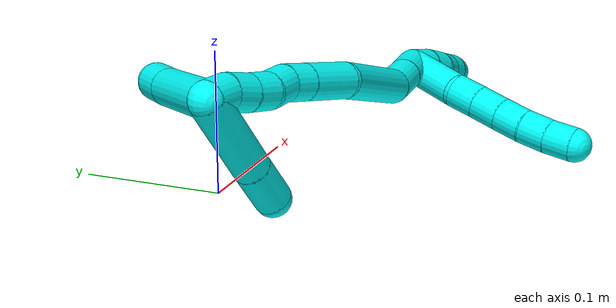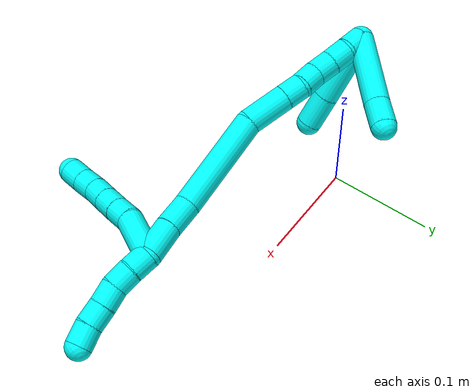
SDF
<sdf version="1.7">
 <world name="default">
  <model name="3">
   <static>0</static>
   <link name="3">
    <collision name="collision-cylinder-e_1_2_8">
     <pose>0.001193 -0.003506 0.023898 0.145655 0.049351 0.003601</pose>
     <geometry><cylinder><radius>0.0125</radius><length>0.048366</length></cylinder></geometry>
     <surface>
      <friction><ode><mu>1.16</mu><mu2>1.16</mu2><slip1>0</slip1><slip2>0</slip2></ode></friction>
      <contact><ode><kp>1e+06</kp><kd>1</kd><max_vel>0</max_vel><min_depth>0.001</min_depth></ode></contact>
     </surface>
    </collision>
    <visual name="visual-cylinder-e_1_2_8">
     <pose>0.001193 -0.003506 0.023898 0.145655 0.049351 0.003601</pose>
     <geometry><cylinder><radius>0.0125</radius><length>0.048366</length></cylinder></geometry>
     <material><ambient>0.003922 1 0.996078 1</ambient></material>
    </visual>
    <collision name="collision-cylinder-e_2_8_9">
     <pose>0.005389 -0.009637 0.057369 0.267711 0.293752 0.039839</pose>
     <geometry><cylinder><radius>0.0125</radius><length>0.020741</length></cylinder></geometry>
     <surface>
      <friction><ode><mu>1.16</mu><mu2>1.16</mu2><slip1>0</slip1><slip2>0</slip2></ode></friction>
      <contact><ode><kp>1e+06</kp><kd>1</kd><max_vel>0</max_vel><min_depth>0.001</min_depth></ode></contact>
     </surface>
    </collision>
    <visual name="visual-cylinder-e_2_8_9">
     <pose>0.005389 -0.009637 0.057369 0.267711 0.293752 0.039839</pose>
     <geometry><cylinder><radius>0.0125</radius><length>0.020741</length></cylinder></geometry>
     <material><ambient>0.003922 1 0.996078 1</ambient></material>
    </visual>
    <collision name="collision-cylinder-e_3_9_10">
     <pose>0.011078 -0.01483 0.076572 0.260512 0.263339 0.034694</pose>
     <geometry><cylinder><radius>0.0125</radius><length>0.020645</length></cylinder></geometry>
     <surface>
      <friction><ode><mu>1.16</mu><mu2>1.16</mu2><slip1>0</slip1><slip2>0</slip2></ode></friction>
      <contact><ode><kp>1e+06</kp><kd>1</kd><max_vel>0</max_vel><min_depth>0.001</min_depth></ode></contact>
     </surface>
    </collision>
    <visual name="visual-cylinder-e_3_9_10">
     <pose>0.011078 -0.01483 0.076572 0.260512 0.263339 0.034694</pose>
     <geometry><cylinder><radius>0.0125</radius><length>0.020645</length></cylinder></geometry>
     <material><ambient>0.003922 1 0.996078 1</ambient></material>
    </visual>
    <collision name="collision-cylinder-e_4_10_11">
     <pose>0.016368 -0.019706 0.0956 0.240912 0.262684 0.031977</pose>
     <geometry><cylinder><radius>0.0125</radius><length>0.020043</length></cylinder></geometry>
     <surface>
      <friction><ode><mu>1.16</mu><mu2>1.16</mu2><slip1>0</slip1><slip2>0</slip2></ode></friction>
      <contact><ode><kp>1e+06</kp><kd>1</kd><max_vel>0</max_vel><min_depth>0.001</min_depth></ode></contact>
     </surface>
    </collision>
    <visual name="visual-cylinder-e_4_10_11">
     <pose>0.016368 -0.019706 0.0956 0.240912 0.262684 0.031977</pose>
     <geometry><cylinder><radius>0.0125</radius><length>0.020043</length></cylinder></geometry>
     <material><ambient>0.003922 1 0.996078 1</ambient></material>
    </visual>
    <collision name="collision-cylinder-e_5_11_12">
     <pose>0.022534 -0.024055 0.114164 0.218991 0.362744 0.040316</pose>
     <geometry><cylinder><radius>0.0125</radius><length>0.020087</length></cylinder></geometry>
     <surface>
      <friction><ode><mu>1.16</mu><mu2>1.16</mu2><slip1>0</slip1><slip2>0</slip2></ode></friction>
      <contact><ode><kp>1e+06</kp><kd>1</kd><max_vel>0</max_vel><min_depth>0.001</min_depth></ode></contact>
     </surface>
    </collision>
    <visual name="visual-cylinder-e_5_11_12">
     <pose>0.022534 -0.024055 0.114164 0.218991 0.362744 0.040316</pose>
     <geometry><cylinder><radius>0.0125</radius><length>0.020087</length></cylinder></geometry>
     <material><ambient>0.003922 1 0.996078 1</ambient></material>
    </visual>
    <collision name="collision-cylinder-e_6_12_6">
     <pose>0.029746 -0.027271 0.13263 0.125793 0.371104 0.023643</pose>
     <geometry><cylinder><radius>0.0125</radius><length>0.020118</length></cylinder></geometry>
     <surface>
      <friction><ode><mu>1.16</mu><mu2>1.16</mu2><slip1>0</slip1><slip2>0</slip2></ode></friction>
      <contact><ode><kp>1e+06</kp><kd>1</kd><max_vel>0</max_vel><min_depth>0.001</min_depth></ode></contact>
     </surface>
    </collision>
    <visual name="visual-cylinder-e_6_12_6">
     <pose>0.029746 -0.027271 0.13263 0.125793 0.371104 0.023643</pose>
     <geometry><cylinder><radius>0.0125</radius><length>0.020118</length></cylinder></geometry>
     <material><ambient>0.003922 1 0.996078 1</ambient></material>
    </visual>
    <collision name="collision-cylinder-e_1_2_13">
     <pose>0.009 -0.002791 -0.003348 2.44672 1.11975 2.09378</pose>
     <geometry><cylinder><radius>0.0125</radius><length>0.02</length></cylinder></geometry>
     <surface>
      <friction><ode><mu>1.16</mu><mu2>1.16</mu2><slip1>0</slip1><slip2>0</slip2></ode></friction>
      <contact><ode><kp>1e+06</kp><kd>1</kd><max_vel>0</max_vel><min_depth>0.001</min_depth></ode></contact>
     </surface>
    </collision>
    <visual name="visual-cylinder-e_1_2_13">
     <pose>0.009 -0.002791 -0.003348 2.44672 1.11975 2.09378</pose>
     <geometry><cylinder><radius>0.0125</radius><length>0.02</length></cylinder></geometry>
     <material><ambient>0.003922 1 0.996078 1</ambient></material>
    </visual>
    <collision name="collision-cylinder-e_2_13_14">
     <pose>0.026623 -0.009472 -0.009938 2.26548 1.03982 1.77004</pose>
     <geometry><cylinder><radius>0.0125</radius><length>0.02</length></cylinder></geometry>
     <surface>
      <friction><ode><mu>1.16</mu><mu2>1.16</mu2><slip1>0</slip1><slip2>0</slip2></ode></friction>
      <contact><ode><kp>1e+06</kp><kd>1</kd><max_vel>0</max_vel><min_depth>0.001</min_depth></ode></contact>
     </surface>
    </collision>
    <visual name="visual-cylinder-e_2_13_14">
     <pose>0.026623 -0.009472 -0.009938 2.26548 1.03982 1.77004</pose>
     <geometry><cylinder><radius>0.0125</radius><length>0.02</length></cylinder></geometry>
     <material><ambient>0.003922 1 0.996078 1</ambient></material>
    </visual>
    <collision name="collision-cylinder-e_3_14_15">
     <pose>0.042622 -0.017183 -0.018747 2.54021 0.829517 1.9144</pose>
     <geometry><cylinder><radius>0.0125</radius><length>0.02</length></cylinder></geometry>
     <surface>
      <friction><ode><mu>1.16</mu><mu2>1.16</mu2><slip1>0</slip1><slip2>0</slip2></ode></friction>
      <contact><ode><kp>1e+06</kp><kd>1</kd><max_vel>0</max_vel><min_depth>0.001</min_depth></ode></contact>
     </surface>
    </collision>
    <visual name="visual-cylinder-e_3_14_15">
     <pose>0.042622 -0.017183 -0.018747 2.54021 0.829517 1.9144</pose>
     <geometry><cylinder><radius>0.0125</radius><length>0.02</length></cylinder></geometry>
     <material><ambient>0.003922 1 0.996078 1</ambient></material>
    </visual>
    <collision name="collision-cylinder-e_4_15_16">
     <pose>0.057769 -0.024635 -0.029455 2.52656 0.890077 1.96667</pose>
     <geometry><cylinder><radius>0.0125</radius><length>0.02</length></cylinder></geometry>
     <surface>
      <friction><ode><mu>1.16</mu><mu2>1.16</mu2><slip1>0</slip1><slip2>0</slip2></ode></friction>
      <contact><ode><kp>1e+06</kp><kd>1</kd><max_vel>0</max_vel><min_depth>0.001</min_depth></ode></contact>
     </surface>
    </collision>
    <visual name="visual-cylinder-e_4_15_16">
     <pose>0.057769 -0.024635 -0.029455 2.52656 0.890077 1.96667</pose>
     <geometry><cylinder><radius>0.0125</radius><length>0.02</length></cylinder></geometry>
     <material><ambient>0.003922 1 0.996078 1</ambient></material>
    </visual>
    <collision name="collision-cylinder-e_5_16_5">
     <pose>0.072212 -0.032243 -0.040894 2.57837 0.730366 1.84608</pose>
     <geometry><cylinder><radius>0.0125</radius><length>0.02</length></cylinder></geometry>
     <surface>
      <friction><ode><mu>1.16</mu><mu2>1.16</mu2><slip1>0</slip1><slip2>0</slip2></ode></friction>
      <contact><ode><kp>1e+06</kp><kd>1</kd><max_vel>0</max_vel><min_depth>0.001</min_depth></ode></contact>
     </surface>
    </collision>
    <visual name="visual-cylinder-e_5_16_5">
     <pose>0.072212 -0.032243 -0.040894 2.57837 0.730366 1.84608</pose>
     <geometry><cylinder><radius>0.0125</radius><length>0.02</length></cylinder></geometry>
     <material><ambient>0.003922 1 0.996078 1</ambient></material>
    </visual>
    <collision name="collision-cylinder-e_1_2_17">
     <pose>-0.012491 0.001694 0.01019 -0.164746 -0.879831 0.077679</pose>
     <geometry><cylinder><radius>0.0125</radius><length>0.032418</length></cylinder></geometry>
     <surface>
      <friction><ode><mu>1.16</mu><mu2>1.16</mu2><slip1>0</slip1><slip2>0</slip2></ode></friction>
      <contact><ode><kp>1e+06</kp><kd>1</kd><max_vel>0</max_vel><min_depth>0.001</min_depth></ode></contact>
     </surface>
    </collision>
    <visual name="visual-cylinder-e_1_2_17">
     <pose>-0.012491 0.001694 0.01019 -0.164746 -0.879831 0.077679</pose>
     <geometry><cylinder><radius>0.0125</radius><length>0.032418</length></cylinder></geometry>
     <material><ambient>0.003922 1 0.996078 1</ambient></material>
    </visual>
    <collision name="collision-cylinder-e_2_17_18">
     <pose>-0.037036 0.004506 0.029111 -0.127292 -0.940011 0.064726</pose>
     <geometry><cylinder><radius>0.0125</radius><length>0.029852</length></cylinder></geometry>
     <surface>
      <friction><ode><mu>1.16</mu><mu2>1.16</mu2><slip1>0</slip1><slip2>0</slip2></ode></friction>
      <contact><ode><kp>1e+06</kp><kd>1</kd><max_vel>0</max_vel><min_depth>0.001</min_depth></ode></contact>
     </surface>
    </collision>
    <visual name="visual-cylinder-e_2_17_18">
     <pose>-0.037036 0.004506 0.029111 -0.127292 -0.940011 0.064726</pose>
     <geometry><cylinder><radius>0.0125</radius><length>0.029852</length></cylinder></geometry>
     <material><ambient>0.003922 1 0.996078 1</ambient></material>
    </visual>
    <collision name="collision-cylinder-e_3_18_19">
     <pose>-0.08726 0.023481 0.061175 -0.65326 -0.914773 0.330438</pose>
     <geometry><cylinder><radius>0.0125</radius><length>0.096337</length></cylinder></geometry>
     <surface>
      <friction><ode><mu>1.16</mu><mu2>1.16</mu2><slip1>0</slip1><slip2>0</slip2></ode></friction>
      <contact><ode><kp>1e+06</kp><kd>1</kd><max_vel>0</max_vel><min_depth>0.001</min_depth></ode></contact>
     </surface>
    </collision>
    <visual name="visual-cylinder-e_3_18_19">
     <pose>-0.08726 0.023481 0.061175 -0.65326 -0.914773 0.330438</pose>
     <geometry><cylinder><radius>0.0125</radius><length>0.096337</length></cylinder></geometry>
     <material><ambient>0.003922 1 0.996078 1</ambient></material>
    </visual>
    <collision name="collision-cylinder-e_4_19_20">
     <pose>-0.144815 0.046628 0.089323 -0.832335 -1.2173 0.597602</pose>
     <geometry><cylinder><radius>0.0125</radius><length>0.041327</length></cylinder></geometry>
     <surface>
      <friction><ode><mu>1.16</mu><mu2>1.16</mu2><slip1>0</slip1><slip2>0</slip2></ode></friction>
      <contact><ode><kp>1e+06</kp><kd>1</kd><max_vel>0</max_vel><min_depth>0.001</min_depth></ode></contact>
     </surface>
    </collision>
    <visual name="visual-cylinder-e_4_19_20">
     <pose>-0.144815 0.046628 0.089323 -0.832335 -1.2173 0.597602</pose>
     <geometry><cylinder><radius>0.0125</radius><length>0.041327</length></cylinder></geometry>
     <material><ambient>0.003922 1 0.996078 1</ambient></material>
    </visual>
    <collision name="collision-cylinder-e_5_20_21">
     <pose>-0.173617 0.054458 0.096414 -0.840123 -1.22319 0.607101</pose>
     <geometry><cylinder><radius>0.0125</radius><length>0.020029</length></cylinder></geometry>
     <surface>
      <friction><ode><mu>1.16</mu><mu2>1.16</mu2><slip1>0</slip1><slip2>0</slip2></ode></friction>
      <contact><ode><kp>1e+06</kp><kd>1</kd><max_vel>0</max_vel><min_depth>0.001</min_depth></ode></contact>
     </surface>
    </collision>
    <visual name="visual-cylinder-e_5_20_21">
     <pose>-0.173617 0.054458 0.096414 -0.840123 -1.22319 0.607101</pose>
     <geometry><cylinder><radius>0.0125</radius><length>0.020029</length></cylinder></geometry>
     <material><ambient>0.003922 1 0.996078 1</ambient></material>
    </visual>
    <collision name="collision-cylinder-e_6_21_22">
     <pose>-0.191907 0.057804 0.10324 -0.175141 -1.09085 0.106452</pose>
     <geometry><cylinder><radius>0.0125</radius><length>0.02001</length></cylinder></geometry>
     <surface>
      <friction><ode><mu>1.16</mu><mu2>1.16</mu2><slip1>0</slip1><slip2>0</slip2></ode></friction>
      <contact><ode><kp>1e+06</kp><kd>1</kd><max_vel>0</max_vel><min_depth>0.001</min_depth></ode></contact>
     </surface>
    </collision>
    <visual name="visual-cylinder-e_6_21_22">
     <pose>-0.191907 0.057804 0.10324 -0.175141 -1.09085 0.106452</pose>
     <geometry><cylinder><radius>0.0125</radius><length>0.02001</length></cylinder></geometry>
     <material><ambient>0.003922 1 0.996078 1</ambient></material>
    </visual>
    <collision name="collision-cylinder-e_7_22_23">
     <pose>-0.210125 0.060975 0.11049 -0.719384 -1.20386 0.505619</pose>
     <geometry><cylinder><radius>0.0125</radius><length>0.02002</length></cylinder></geometry>
     <surface>
      <friction><ode><mu>1.16</mu><mu2>1.16</mu2><slip1>0</slip1><slip2>0</slip2></ode></friction>
      <contact><ode><kp>1e+06</kp><kd>1</kd><max_vel>0</max_vel><min_depth>0.001</min_depth></ode></contact>
     </surface>
    </collision>
    <visual name="visual-cylinder-e_7_22_23">
     <pose>-0.210125 0.060975 0.11049 -0.719384 -1.20386 0.505619</pose>
     <geometry><cylinder><radius>0.0125</radius><length>0.02002</length></cylinder></geometry>
     <material><ambient>0.003922 1 0.996078 1</ambient></material>
    </visual>
    <collision name="collision-cylinder-e_8_23_24">
     <pose>-0.228655 0.066405 0.115692 -0.886411 -1.16432 0.605727</pose>
     <geometry><cylinder><radius>0.0125</radius><length>0.020004</length></cylinder></geometry>
     <surface>
      <friction><ode><mu>1.16</mu><mu2>1.16</mu2><slip1>0</slip1><slip2>0</slip2></ode></friction>
      <contact><ode><kp>1e+06</kp><kd>1</kd><max_vel>0</max_vel><min_depth>0.001</min_depth></ode></contact>
     </surface>
    </collision>
    <visual name="visual-cylinder-e_8_23_24">
     <pose>-0.228655 0.066405 0.115692 -0.886411 -1.16432 0.605727</pose>
     <geometry><cylinder><radius>0.0125</radius><length>0.020004</length></cylinder></geometry>
     <material><ambient>0.003922 1 0.996078 1</ambient></material>
    </visual>
    <collision name="collision-cylinder-e_9_24_1">
     <pose>-0.246964 0.070412 0.122184 -0.231888 -1.14819 0.150368</pose>
     <geometry><cylinder><radius>0.0125</radius><length>0.020003</length></cylinder></geometry>
     <surface>
      <friction><ode><mu>1.16</mu><mu2>1.16</mu2><slip1>0</slip1><slip2>0</slip2></ode></friction>
      <contact><ode><kp>1e+06</kp><kd>1</kd><max_vel>0</max_vel><min_depth>0.001</min_depth></ode></contact>
     </surface>
    </collision>
    <visual name="visual-cylinder-e_9_24_1">
     <pose>-0.246964 0.070412 0.122184 -0.231888 -1.14819 0.150368</pose>
     <geometry><cylinder><radius>0.0125</radius><length>0.020003</length></cylinder></geometry>
     <material><ambient>0.003922 1 0.996078 1</ambient></material>
    </visual>
    <collision name="collision-cylinder-e_1_1_25">
     <pose>-0.248793 0.063334 0.090697 2.91926 0.197859 1.45359</pose>
     <geometry><cylinder><radius>0.0125</radius><length>0.074197</length></cylinder></geometry>
     <surface>
      <friction><ode><mu>1.16</mu><mu2>1.16</mu2><slip1>0</slip1><slip2>0</slip2></ode></friction>
      <contact><ode><kp>1e+06</kp><kd>1</kd><max_vel>0</max_vel><min_depth>0.001</min_depth></ode></contact>
     </surface>
    </collision>
    <visual name="visual-cylinder-e_1_1_25">
     <pose>-0.248793 0.063334 0.090697 2.91926 0.197859 1.45359</pose>
     <geometry><cylinder><radius>0.0125</radius><length>0.074197</length></cylinder></geometry>
     <material><ambient>0.003922 1 0.996078 1</ambient></material>
    </visual>
    <collision name="collision-cylinder-e_2_25_4">
     <pose>-0.23918 0.053263 0.042693 2.97933 0.180925 1.67998</pose>
     <geometry><cylinder><radius>0.0125</radius><length>0.025803</length></cylinder></geometry>
     <surface>
      <friction><ode><mu>1.16</mu><mu2>1.16</mu2><slip1>0</slip1><slip2>0</slip2></ode></friction>
      <contact><ode><kp>1e+06</kp><kd>1</kd><max_vel>0</max_vel><min_depth>0.001</min_depth></ode></contact>
     </surface>
    </collision>
    <visual name="visual-cylinder-e_2_25_4">
     <pose>-0.23918 0.053263 0.042693 2.97933 0.180925 1.67998</pose>
     <geometry><cylinder><radius>0.0125</radius><length>0.025803</length></cylinder></geometry>
     <material><ambient>0.003922 1 0.996078 1</ambient></material>
    </visual>
    <collision name="collision-cylinder-e_1_1_26">
     <pose>-0.238627 0.042924 0.121705 1.72678 0.545298 0.632118</pose>
     <geometry><cylinder><radius>0.0125</radius><length>0.067324</length></cylinder></geometry>
     <surface>
      <friction><ode><mu>1.16</mu><mu2>1.16</mu2><slip1>0</slip1><slip2>0</slip2></ode></friction>
      <contact><ode><kp>1e+06</kp><kd>1</kd><max_vel>0</max_vel><min_depth>0.001</min_depth></ode></contact>
     </surface>
    </collision>
    <visual name="visual-cylinder-e_1_1_26">
     <pose>-0.238627 0.042924 0.121705 1.72678 0.545298 0.632118</pose>
     <geometry><cylinder><radius>0.0125</radius><length>0.067324</length></cylinder></geometry>
     <material><ambient>0.003922 1 0.996078 1</ambient></material>
    </visual>
    <collision name="collision-cylinder-e_2_26_3">
     <pose>-0.21245 0.000867 0.114943 1.73737 0.562759 0.658529</pose>
     <geometry><cylinder><radius>0.0125</radius><length>0.032676</length></cylinder></geometry>
     <surface>
      <friction><ode><mu>1.16</mu><mu2>1.16</mu2><slip1>0</slip1><slip2>0</slip2></ode></friction>
      <contact><ode><kp>1e+06</kp><kd>1</kd><max_vel>0</max_vel><min_depth>0.001</min_depth></ode></contact>
     </surface>
    </collision>
    <visual name="visual-cylinder-e_2_26_3">
     <pose>-0.21245 0.000867 0.114943 1.73737 0.562759 0.658529</pose>
     <geometry><cylinder><radius>0.0125</radius><length>0.032676</length></cylinder></geometry>
     <material><ambient>0.003922 1 0.996078 1</ambient></material>
    </visual>
    <collision name="collision-sphere-3">
     <pose>-0.203734 -0.012761 0.112652 0 -0 0</pose>
     <geometry><sphere><radius>0.0125</radius></sphere></geometry>
     <surface>
      <friction><ode><mu>1.16</mu><mu2>1.16</mu2><slip1>0</slip1><slip2>0</slip2></ode></friction>
      <contact><ode><kp>1e+06</kp><kd>1</kd><max_vel>0</max_vel><min_depth>0.001</min_depth></ode></contact>
     </surface>
    </collision>
    <visual name="visual-sphere-3">
     <pose>-0.203734 -0.012761 0.112652 0 -0 0</pose>
     <geometry><sphere><radius>0.0125</radius></sphere></geometry>
     <material><ambient>0.003922 1 0.996078 1</ambient></material>
    </visual>
    <collision name="collision-sphere-26">
     <pose>-0.221167 0.014494 0.117234 0 -0 0</pose>
     <geometry><sphere><radius>0.0125</radius></sphere></geometry>
     <surface>
      <friction><ode><mu>1.16</mu><mu2>1.16</mu2><slip1>0</slip1><slip2>0</slip2></ode></friction>
      <contact><ode><kp>1e+06</kp><kd>1</kd><max_vel>0</max_vel><min_depth>0.001</min_depth></ode></contact>
     </surface>
    </collision>
    <visual name="visual-sphere-26">
     <pose>-0.221167 0.014494 0.117234 0 -0 0</pose>
     <geometry><sphere><radius>0.0125</radius></sphere></geometry>
     <material><ambient>0.003922 1 0.996078 1</ambient></material>
    </visual>
    <collision name="collision-sphere-4">
     <pose>-0.236858 0.051213 0.030169 0 -0 0</pose>
     <geometry><sphere><radius>0.0125</radius></sphere></geometry>
     <surface>
      <friction><ode><mu>1.16</mu><mu2>1.16</mu2><slip1>0</slip1><slip2>0</slip2></ode></friction>
      <contact><ode><kp>1e+06</kp><kd>1</kd><max_vel>0</max_vel><min_depth>0.001</min_depth></ode></contact>
     </surface>
    </collision>
    <visual name="visual-sphere-4">
     <pose>-0.236858 0.051213 0.030169 0 -0 0</pose>
     <geometry><sphere><radius>0.0125</radius></sphere></geometry>
     <material><ambient>0.003922 1 0.996078 1</ambient></material>
    </visual>
    <collision name="collision-sphere-25">
     <pose>-0.241501 0.055313 0.055217 0 -0 0</pose>
     <geometry><sphere><radius>0.0125</radius></sphere></geometry>
     <surface>
      <friction><ode><mu>1.16</mu><mu2>1.16</mu2><slip1>0</slip1><slip2>0</slip2></ode></friction>
      <contact><ode><kp>1e+06</kp><kd>1</kd><max_vel>0</max_vel><min_depth>0.001</min_depth></ode></contact>
     </surface>
    </collision>
    <visual name="visual-sphere-25">
     <pose>-0.241501 0.055313 0.055217 0 -0 0</pose>
     <geometry><sphere><radius>0.0125</radius></sphere></geometry>
     <material><ambient>0.003922 1 0.996078 1</ambient></material>
    </visual>
    <collision name="collision-sphere-1">
     <pose>-0.256086 0.071355 0.126176 0 -0 0</pose>
     <geometry><sphere><radius>0.0125</radius></sphere></geometry>
     <surface>
      <friction><ode><mu>1.16</mu><mu2>1.16</mu2><slip1>0</slip1><slip2>0</slip2></ode></friction>
      <contact><ode><kp>1e+06</kp><kd>1</kd><max_vel>0</max_vel><min_depth>0.001</min_depth></ode></contact>
     </surface>
    </collision>
    <visual name="visual-sphere-1">
     <pose>-0.256086 0.071355 0.126176 0 -0 0</pose>
     <geometry><sphere><radius>0.0125</radius></sphere></geometry>
     <material><ambient>0.003922 1 0.996078 1</ambient></material>
    </visual>
    <collision name="collision-sphere-24">
     <pose>-0.237842 0.069469 0.118192 0 -0 0</pose>
     <geometry><sphere><radius>0.0125</radius></sphere></geometry>
     <surface>
      <friction><ode><mu>1.16</mu><mu2>1.16</mu2><slip1>0</slip1><slip2>0</slip2></ode></friction>
      <contact><ode><kp>1e+06</kp><kd>1</kd><max_vel>0</max_vel><min_depth>0.001</min_depth></ode></contact>
     </surface>
    </collision>
    <visual name="visual-sphere-24">
     <pose>-0.237842 0.069469 0.118192 0 -0 0</pose>
     <geometry><sphere><radius>0.0125</radius></sphere></geometry>
     <material><ambient>0.003922 1 0.996078 1</ambient></material>
    </visual>
    <collision name="collision-sphere-23">
     <pose>-0.219468 0.063341 0.113191 0 -0 0</pose>
     <geometry><sphere><radius>0.0125</radius></sphere></geometry>
     <surface>
      <friction><ode><mu>1.16</mu><mu2>1.16</mu2><slip1>0</slip1><slip2>0</slip2></ode></friction>
      <contact><ode><kp>1e+06</kp><kd>1</kd><max_vel>0</max_vel><min_depth>0.001</min_depth></ode></contact>
     </surface>
    </collision>
    <visual name="visual-sphere-23">
     <pose>-0.219468 0.063341 0.113191 0 -0 0</pose>
     <geometry><sphere><radius>0.0125</radius></sphere></geometry>
     <material><ambient>0.003922 1 0.996078 1</ambient></material>
    </visual>
    <collision name="collision-sphere-22">
     <pose>-0.200781 0.058609 0.107789 0 -0 0</pose>
     <geometry><sphere><radius>0.0125</radius></sphere></geometry>
     <surface>
      <friction><ode><mu>1.16</mu><mu2>1.16</mu2><slip1>0</slip1><slip2>0</slip2></ode></friction>
      <contact><ode><kp>1e+06</kp><kd>1</kd><max_vel>0</max_vel><min_depth>0.001</min_depth></ode></contact>
     </surface>
    </collision>
    <visual name="visual-sphere-22">
     <pose>-0.200781 0.058609 0.107789 0 -0 0</pose>
     <geometry><sphere><radius>0.0125</radius></sphere></geometry>
     <material><ambient>0.003922 1 0.996078 1</ambient></material>
    </visual>
    <collision name="collision-sphere-21">
     <pose>-0.183032 0.056999 0.098691 0 -0 0</pose>
     <geometry><sphere><radius>0.0125</radius></sphere></geometry>
     <surface>
      <friction><ode><mu>1.16</mu><mu2>1.16</mu2><slip1>0</slip1><slip2>0</slip2></ode></friction>
      <contact><ode><kp>1e+06</kp><kd>1</kd><max_vel>0</max_vel><min_depth>0.001</min_depth></ode></contact>
     </surface>
    </collision>
    <visual name="visual-sphere-21">
     <pose>-0.183032 0.056999 0.098691 0 -0 0</pose>
     <geometry><sphere><radius>0.0125</radius></sphere></geometry>
     <material><ambient>0.003922 1 0.996078 1</ambient></material>
    </visual>
    <collision name="collision-sphere-12">
     <pose>0.026098 -0.026095 0.12333 0 -0 0</pose>
     <geometry><sphere><radius>0.0125</radius></sphere></geometry>
     <surface>
      <friction><ode><mu>1.16</mu><mu2>1.16</mu2><slip1>0</slip1><slip2>0</slip2></ode></friction>
      <contact><ode><kp>1e+06</kp><kd>1</kd><max_vel>0</max_vel><min_depth>0.001</min_depth></ode></contact>
     </surface>
    </collision>
    <visual name="visual-sphere-12">
     <pose>0.026098 -0.026095 0.12333 0 -0 0</pose>
     <geometry><sphere><radius>0.0125</radius></sphere></geometry>
     <material><ambient>0.003922 1 0.996078 1</ambient></material>
    </visual>
    <collision name="collision-sphere-11">
     <pose>0.01897 -0.022015 0.104999 0 -0 0</pose>
     <geometry><sphere><radius>0.0125</radius></sphere></geometry>
     <surface>
      <friction><ode><mu>1.16</mu><mu2>1.16</mu2><slip1>0</slip1><slip2>0</slip2></ode></friction>
      <contact><ode><kp>1e+06</kp><kd>1</kd><max_vel>0</max_vel><min_depth>0.001</min_depth></ode></contact>
     </surface>
    </collision>
    <visual name="visual-sphere-11">
     <pose>0.01897 -0.022015 0.104999 0 -0 0</pose>
     <geometry><sphere><radius>0.0125</radius></sphere></geometry>
     <material><ambient>0.003922 1 0.996078 1</ambient></material>
    </visual>
    <collision name="collision-sphere-10">
     <pose>0.013766 -0.017397 0.086202 0 -0 0</pose>
     <geometry><sphere><radius>0.0125</radius></sphere></geometry>
     <surface>
      <friction><ode><mu>1.16</mu><mu2>1.16</mu2><slip1>0</slip1><slip2>0</slip2></ode></friction>
      <contact><ode><kp>1e+06</kp><kd>1</kd><max_vel>0</max_vel><min_depth>0.001</min_depth></ode></contact>
     </surface>
    </collision>
    <visual name="visual-sphere-10">
     <pose>0.013766 -0.017397 0.086202 0 -0 0</pose>
     <geometry><sphere><radius>0.0125</radius></sphere></geometry>
     <material><ambient>0.003922 1 0.996078 1</ambient></material>
    </visual>
    <collision name="collision-sphere-9">
     <pose>0.008391 -0.012263 0.066941 0 -0 0</pose>
     <geometry><sphere><radius>0.0125</radius></sphere></geometry>
     <surface>
      <friction><ode><mu>1.16</mu><mu2>1.16</mu2><slip1>0</slip1><slip2>0</slip2></ode></friction>
      <contact><ode><kp>1e+06</kp><kd>1</kd><max_vel>0</max_vel><min_depth>0.001</min_depth></ode></contact>
     </surface>
    </collision>
    <visual name="visual-sphere-9">
     <pose>0.008391 -0.012263 0.066941 0 -0 0</pose>
     <geometry><sphere><radius>0.0125</radius></sphere></geometry>
     <material><ambient>0.003922 1 0.996078 1</ambient></material>
    </visual>
    <collision name="collision-sphere-2">
     <geometry><sphere><radius>0.0125</radius></sphere></geometry>
     <surface>
      <friction><ode><mu>1.16</mu><mu2>1.16</mu2><slip1>0</slip1><slip2>0</slip2></ode></friction>
      <contact><ode><kp>1e+06</kp><kd>1</kd><max_vel>0</max_vel><min_depth>0.001</min_depth></ode></contact>
     </surface>
    </collision>
    <visual name="visual-sphere-2">
     <geometry><sphere><radius>0.0125</radius></sphere></geometry>
     <material><ambient>0.003922 1 0.996078 1</ambient></material>
    </visual>
    <collision name="collision-sphere-19">
     <pose>-0.12543 0.041338 0.084507 0 -0 0</pose>
     <geometry><sphere><radius>0.0125</radius></sphere></geometry>
     <surface>
      <friction><ode><mu>1.16</mu><mu2>1.16</mu2><slip1>0</slip1><slip2>0</slip2></ode></friction>
      <contact><ode><kp>1e+06</kp><kd>1</kd><max_vel>0</max_vel><min_depth>0.001</min_depth></ode></contact>
     </surface>
    </collision>
    <visual name="visual-sphere-19">
     <pose>-0.12543 0.041338 0.084507 0 -0 0</pose>
     <geometry><sphere><radius>0.0125</radius></sphere></geometry>
     <material><ambient>0.003922 1 0.996078 1</ambient></material>
    </visual>
    <collision name="collision-sphere-8">
     <pose>0.002386 -0.007011 0.047796 0 -0 0</pose>
     <geometry><sphere><radius>0.0125</radius></sphere></geometry>
     <surface>
      <friction><ode><mu>1.16</mu><mu2>1.16</mu2><slip1>0</slip1><slip2>0</slip2></ode></friction>
      <contact><ode><kp>1e+06</kp><kd>1</kd><max_vel>0</max_vel><min_depth>0.001</min_depth></ode></contact>
     </surface>
    </collision>
    <visual name="visual-sphere-8">
     <pose>0.002386 -0.007011 0.047796 0 -0 0</pose>
     <geometry><sphere><radius>0.0125</radius></sphere></geometry>
     <material><ambient>0.003922 1 0.996078 1</ambient></material>
    </visual>
    <collision name="collision-sphere-6">
     <pose>0.033393 -0.028447 0.14193 0 -0 0</pose>
     <geometry><sphere><radius>0.0125</radius></sphere></geometry>
     <surface>
      <friction><ode><mu>1.16</mu><mu2>1.16</mu2><slip1>0</slip1><slip2>0</slip2></ode></friction>
      <contact><ode><kp>1e+06</kp><kd>1</kd><max_vel>0</max_vel><min_depth>0.001</min_depth></ode></contact>
     </surface>
    </collision>
    <visual name="visual-sphere-6">
     <pose>0.033393 -0.028447 0.14193 0 -0 0</pose>
     <geometry><sphere><radius>0.0125</radius></sphere></geometry>
     <material><ambient>0.003922 1 0.996078 1</ambient></material>
    </visual>
    <collision name="collision-sphere-13">
     <pose>0.018 -0.005582 -0.006697 0 -0 0</pose>
     <geometry><sphere><radius>0.0125</radius></sphere></geometry>
     <surface>
      <friction><ode><mu>1.16</mu><mu2>1.16</mu2><slip1>0</slip1><slip2>0</slip2></ode></friction>
      <contact><ode><kp>1e+06</kp><kd>1</kd><max_vel>0</max_vel><min_depth>0.001</min_depth></ode></contact>
     </surface>
    </collision>
    <visual name="visual-sphere-13">
     <pose>0.018 -0.005582 -0.006697 0 -0 0</pose>
     <geometry><sphere><radius>0.0125</radius></sphere></geometry>
     <material><ambient>0.003922 1 0.996078 1</ambient></material>
    </visual>
    <collision name="collision-sphere-14">
     <pose>0.035246 -0.013363 -0.01318 0 -0 0</pose>
     <geometry><sphere><radius>0.0125</radius></sphere></geometry>
     <surface>
      <friction><ode><mu>1.16</mu><mu2>1.16</mu2><slip1>0</slip1><slip2>0</slip2></ode></friction>
      <contact><ode><kp>1e+06</kp><kd>1</kd><max_vel>0</max_vel><min_depth>0.001</min_depth></ode></contact>
     </surface>
    </collision>
    <visual name="visual-sphere-14">
     <pose>0.035246 -0.013363 -0.01318 0 -0 0</pose>
     <geometry><sphere><radius>0.0125</radius></sphere></geometry>
     <material><ambient>0.003922 1 0.996078 1</ambient></material>
    </visual>
    <collision name="collision-sphere-15">
     <pose>0.049998 -0.021003 -0.024315 0 -0 0</pose>
     <geometry><sphere><radius>0.0125</radius></sphere></geometry>
     <surface>
      <friction><ode><mu>1.16</mu><mu2>1.16</mu2><slip1>0</slip1><slip2>0</slip2></ode></friction>
      <contact><ode><kp>1e+06</kp><kd>1</kd><max_vel>0</max_vel><min_depth>0.001</min_depth></ode></contact>
     </surface>
    </collision>
    <visual name="visual-sphere-15">
     <pose>0.049998 -0.021003 -0.024315 0 -0 0</pose>
     <geometry><sphere><radius>0.0125</radius></sphere></geometry>
     <material><ambient>0.003922 1 0.996078 1</ambient></material>
    </visual>
    <collision name="collision-sphere-16">
     <pose>0.065541 -0.028266 -0.034596 0 -0 0</pose>
     <geometry><sphere><radius>0.0125</radius></sphere></geometry>
     <surface>
      <friction><ode><mu>1.16</mu><mu2>1.16</mu2><slip1>0</slip1><slip2>0</slip2></ode></friction>
      <contact><ode><kp>1e+06</kp><kd>1</kd><max_vel>0</max_vel><min_depth>0.001</min_depth></ode></contact>
     </surface>
    </collision>
    <visual name="visual-sphere-16">
     <pose>0.065541 -0.028266 -0.034596 0 -0 0</pose>
     <geometry><sphere><radius>0.0125</radius></sphere></geometry>
     <material><ambient>0.003922 1 0.996078 1</ambient></material>
    </visual>
    <collision name="collision-sphere-5">
     <pose>0.078883 -0.036221 -0.047193 0 -0 0</pose>
     <geometry><sphere><radius>0.0125</radius></sphere></geometry>
     <surface>
      <friction><ode><mu>1.16</mu><mu2>1.16</mu2><slip1>0</slip1><slip2>0</slip2></ode></friction>
      <contact><ode><kp>1e+06</kp><kd>1</kd><max_vel>0</max_vel><min_depth>0.001</min_depth></ode></contact>
     </surface>
    </collision>
    <visual name="visual-sphere-5">
     <pose>0.078883 -0.036221 -0.047193 0 -0 0</pose>
     <geometry><sphere><radius>0.0125</radius></sphere></geometry>
     <material><ambient>0.003922 1 0.996078 1</ambient></material>
    </visual>
    <collision name="collision-sphere-17">
     <pose>-0.024982 0.003388 0.020379 0 -0 0</pose>
     <geometry><sphere><radius>0.0125</radius></sphere></geometry>
     <surface>
      <friction><ode><mu>1.16</mu><mu2>1.16</mu2><slip1>0</slip1><slip2>0</slip2></ode></friction>
      <contact><ode><kp>1e+06</kp><kd>1</kd><max_vel>0</max_vel><min_depth>0.001</min_depth></ode></contact>
     </surface>
    </collision>
    <visual name="visual-sphere-17">
     <pose>-0.024982 0.003388 0.020379 0 -0 0</pose>
     <geometry><sphere><radius>0.0125</radius></sphere></geometry>
     <material><ambient>0.003922 1 0.996078 1</ambient></material>
    </visual>
    <collision name="collision-sphere-18">
     <pose>-0.04909 0.005623 0.037843 0 -0 0</pose>
     <geometry><sphere><radius>0.0125</radius></sphere></geometry>
     <surface>
      <friction><ode><mu>1.16</mu><mu2>1.16</mu2><slip1>0</slip1><slip2>0</slip2></ode></friction>
      <contact><ode><kp>1e+06</kp><kd>1</kd><max_vel>0</max_vel><min_depth>0.001</min_depth></ode></contact>
     </surface>
    </collision>
    <visual name="visual-sphere-18">
     <pose>-0.04909 0.005623 0.037843 0 -0 0</pose>
     <geometry><sphere><radius>0.0125</radius></sphere></geometry>
     <material><ambient>0.003922 1 0.996078 1</ambient></material>
    </visual>
    <collision name="collision-sphere-20">
     <pose>-0.164201 0.051918 0.094138 0 -0 0</pose>
     <geometry><sphere><radius>0.0125</radius></sphere></geometry>
     <surface>
      <friction><ode><mu>1.16</mu><mu2>1.16</mu2><slip1>0</slip1><slip2>0</slip2></ode></friction>
      <contact><ode><kp>1e+06</kp><kd>1</kd><max_vel>0</max_vel><min_depth>0.001</min_depth></ode></contact>
     </surface>
    </collision>
    <visual name="visual-sphere-20">
     <pose>-0.164201 0.051918 0.094138 0 -0 0</pose>
     <geometry><sphere><radius>0.0125</radius></sphere></geometry>
     <material><ambient>0.003922 1 0.996078 1</ambient></material>
    </visual>
    <inertial>
     <pose>-0.104849 0.020995 0.067051 0 -0 0</pose>
     <mass>0.75</mass>
     <inertia><ixx>0.000169</ixx><ixy>0</ixy><ixz>0</ixz><iyy>0.00019</iyy><iyz>0</iyz><izz>6.6e-05</izz></inertia>
    </inertial>
   </link>
   <pose>0.198859 -0.069801 0.042456 1.5995 -0.050305 -0.57244</pose>
  </model>
 </world>
</sdf>
